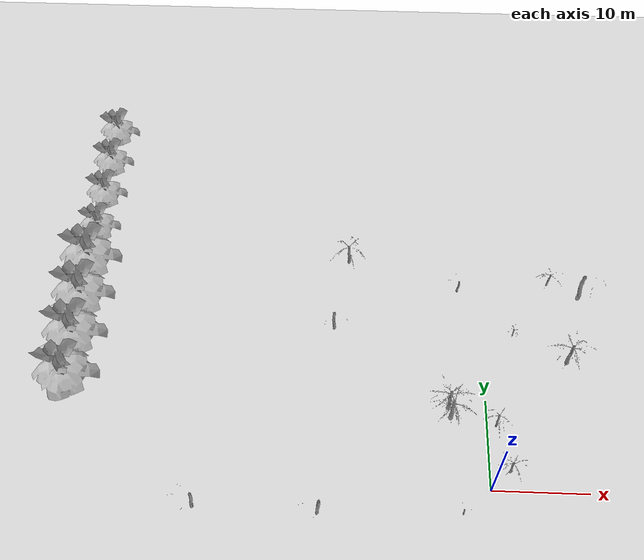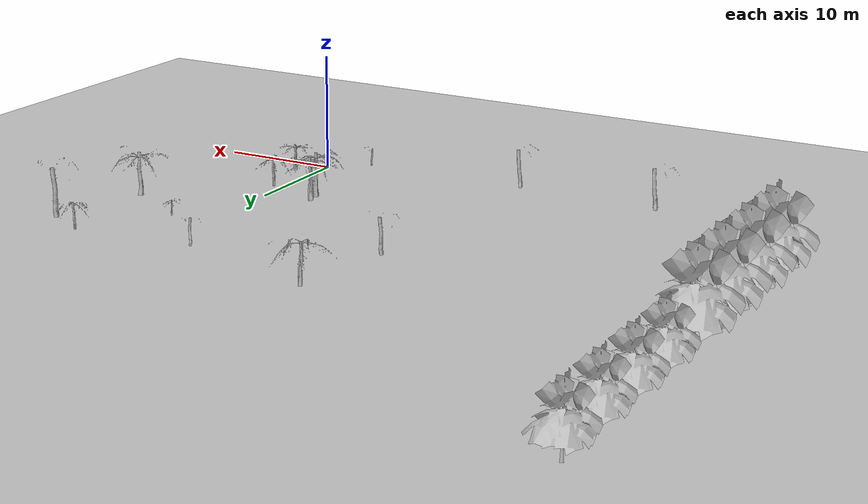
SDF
<sdf version="1.6">
 <world name="default">
  <model name="ground_plane">
   <static>1</static>
   <link name="link">
    <collision name="collision">
     <geometry><plane><normal>0 0 1</normal><size>200 200</size></plane></geometry>
     <surface>
      <contact><collide_bitmask>65535</collide_bitmask></contact>
      <friction><ode><mu>100</mu><mu2>50</mu2></ode></friction>
     </surface>
    </collision>
    <visual name="visual">
     <cast_shadows>0</cast_shadows>
     <geometry><plane><normal>0 0 1</normal><size>200 200</size></plane></geometry>
     <material>
      <script><uri>file://media/materials/scripts/gazebo.material</uri><name>Gazebo/Grey</name></script>
     </material>
    </visual>
   </link>
  </model>
  <model name="tree_0">
   <static>1</static>
   <link name="link">
    <inertial>
     <mass>100</mass>
     <inertia><ixx>100</ixx><ixy>0</ixy><ixz>0</ixz><iyy>100</iyy><iyz>0</iyz><izz>100</izz></inertia>
    </inertial>
    <collision name="collision">
     <geometry><mesh><uri>model://tree/meshes/tree.dae</uri></mesh></geometry>
    </collision>
    <visual name="visual"><geometry><mesh><uri>model://tree/meshes/tree.dae</uri></mesh></geometry></visual>
   </link>
   <pose>-44.6003 10.3851 0 0 -0 0</pose>
  </model>
  <model name="tree_1">
   <static>1</static>
   <link name="link">
    <inertial>
     <mass>100</mass>
     <inertia><ixx>100</ixx><ixy>0</ixy><ixz>0</ixz><iyy>100</iyy><iyz>0</iyz><izz>100</izz></inertia>
    </inertial>
    <collision name="collision">
     <geometry><mesh><uri>model://tree/meshes/tree.dae</uri></mesh></geometry>
    </collision>
    <visual name="visual"><geometry><mesh><uri>model://tree/meshes/tree.dae</uri></mesh></geometry></visual>
   </link>
   <pose>-44.6003 15.3851 0 0 -0 0</pose>
  </model>
  <model name="tree_2">
   <static>1</static>
   <link name="link">
    <inertial>
     <mass>100</mass>
     <inertia><ixx>100</ixx><ixy>0</ixy><ixz>0</ixz><iyy>100</iyy><iyz>0</iyz><izz>100</izz></inertia>
    </inertial>
    <collision name="collision">
     <geometry><mesh><uri>model://tree/meshes/tree.dae</uri></mesh></geometry>
    </collision>
    <visual name="visual"><geometry><mesh><uri>model://tree/meshes/tree.dae</uri></mesh></geometry></visual>
   </link>
   <pose>-44.6003 20.3851 0 0 -0 0</pose>
  </model>
  <model name="tree_3">
   <static>1</static>
   <link name="link">
    <inertial>
     <mass>100</mass>
     <inertia><ixx>100</ixx><ixy>0</ixy><ixz>0</ixz><iyy>100</iyy><iyz>0</iyz><izz>100</izz></inertia>
    </inertial>
    <collision name="collision">
     <geometry><mesh><uri>model://tree/meshes/tree.dae</uri></mesh></geometry>
    </collision>
    <visual name="visual"><geometry><mesh><uri>model://tree/meshes/tree.dae</uri></mesh></geometry></visual>
   </link>
   <pose>-44.6003 25.3851 0 0 -0 0</pose>
  </model>
  <model name="tree_4">
   <static>1</static>
   <link name="link">
    <inertial>
     <mass>100</mass>
     <inertia><ixx>100</ixx><ixy>0</ixy><ixz>0</ixz><iyy>100</iyy><iyz>0</iyz><izz>100</izz></inertia>
    </inertial>
    <collision name="collision">
     <geometry><mesh><uri>model://tree/meshes/tree.dae</uri><scale>0.7 0.7 0.7</scale></mesh></geometry>
    </collision>
    <visual name="visual">
     <geometry><mesh><uri>model://tree/meshes/tree.dae</uri><scale>0.7 0.7 0.7</scale></mesh></geometry>
    </visual>
   </link>
   <pose>-44.6003 30.3851 0 0 -0 0</pose>
  </model>
  <model name="tree_5">
   <static>1</static>
   <link name="link">
    <inertial>
     <mass>100</mass>
     <inertia><ixx>100</ixx><ixy>0</ixy><ixz>0</ixz><iyy>100</iyy><iyz>0</iyz><izz>100</izz></inertia>
    </inertial>
    <collision name="collision">
     <geometry><mesh><uri>model://tree/meshes/tree.dae</uri><scale>0.7 0.7 0.7</scale></mesh></geometry>
    </collision>
    <visual name="visual">
     <geometry><mesh><uri>model://tree/meshes/tree.dae</uri><scale>0.7 0.7 0.7</scale></mesh></geometry>
    </visual>
   </link>
   <pose>-44.6003 35.3851 0 0 -0 0</pose>
  </model>
  <model name="tree_6">
   <static>1</static>
   <link name="link">
    <inertial>
     <mass>100</mass>
     <inertia><ixx>100</ixx><ixy>0</ixy><ixz>0</ixz><iyy>100</iyy><iyz>0</iyz><izz>100</izz></inertia>
    </inertial>
    <collision name="collision">
     <geometry><mesh><uri>model://tree/meshes/tree.dae</uri><scale>0.7 0.7 0.7</scale></mesh></geometry>
    </collision>
    <visual name="visual">
     <geometry><mesh><uri>model://tree/meshes/tree.dae</uri><scale>0.7 0.7 0.7</scale></mesh></geometry>
    </visual>
   </link>
   <pose>-44.6003 40.3851 0 0 -0 0</pose>
  </model>
  <model name="tree_7">
   <static>1</static>
   <link name="link">
    <inertial>
     <mass>100</mass>
     <inertia><ixx>100</ixx><ixy>0</ixy><ixz>0</ixz><iyy>100</iyy><iyz>0</iyz><izz>100</izz></inertia>
    </inertial>
    <collision name="collision">
     <geometry><mesh><uri>model://tree/meshes/tree.dae</uri><scale>0.7 0.7 0.7</scale></mesh></geometry>
    </collision>
    <visual name="visual">
     <geometry><mesh><uri>model://tree/meshes/tree.dae</uri><scale>0.7 0.7 0.7</scale></mesh></geometry>
    </visual>
   </link>
   <pose>-44.6003 45.3851 0 0 -0 0</pose>
  </model>
  <model name="tre_1">
   <static>1</static>
   <link name="link">
    <pose>-3.7424508527905544 5.8271430137608995 0 0 0 3.567828267389643</pose>
    <inertial>
     <mass>100</mass>
     <inertia><ixx>100</ixx><ixy>0</ixy><ixz>0</ixz><iyy>100</iyy><iyz>0</iyz><izz>100</izz></inertia>
    </inertial>
    <collision name="collision">
     <geometry>
      <mesh>
       <uri>file:///home/dgguglielmo/forest_gen/models_high_res/picea_abies_4.dae</uri>
       <scale>1.1164753697339267 1.1164753697339267 1.1164753697339267</scale>
      </mesh>
     </geometry>
    </collision>
    <visual name="visual">
     <geometry>
      <mesh>
       <uri>file:///home/dgguglielmo/forest_gen/models_high_res/picea_abies_4.dae</uri>
       <scale>1.1164753697339267 1.1164753697339267 1.1164753697339267</scale>
      </mesh>
     </geometry>
    </visual>
   </link>
   <pose>-3.7424508527905544 5.8271430137608995 0 0 0 3.567828267389643</pose>
  </model>
  <model name="tre_26">
   <static>1</static>
   <link name="link">
    <pose>-1.3321117786917434 4.8243380110685266 0 0 0 0.2953682563070458</pose>
    <inertial>
     <mass>100</mass>
     <inertia><ixx>100</ixx><ixy>0</ixy><ixz>0</ixz><iyy>100</iyy><iyz>0</iyz><izz>100</izz></inertia>
    </inertial>
    <collision name="collision">
     <geometry>
      <mesh>
       <uri>file:///home/dgguglielmo/forest_gen/models_high_res/picea_abies_4.dae</uri>
       <scale>1.7479213084722356 1.7479213084722356 1.7479213084722356</scale>
      </mesh>
     </geometry>
    </collision>
    <visual name="visual">
     <geometry>
      <mesh>
       <uri>file:///home/dgguglielmo/forest_gen/models_high_res/picea_abies_4.dae</uri>
       <scale>1.7479213084722356 1.7479213084722356 1.7479213084722356</scale>
      </mesh>
     </geometry>
    </visual>
   </link>
   <pose>-1.3321117786917434 4.8243380110685266 0 0 0 0.2953682563070458</pose>
  </model>
  <model name="tre_30">
   <static>1</static>
   <link name="link">
    <pose>-3.83021637844341 16.230051146210037 0 0 0 4.921718425677457</pose>
    <inertial>
     <mass>100</mass>
     <inertia><ixx>100</ixx><ixy>0</ixy><ixz>0</ixz><iyy>100</iyy><iyz>0</iyz><izz>100</izz></inertia>
    </inertial>
    <collision name="collision">
     <geometry>
      <mesh>
       <uri>file:///home/dgguglielmo/forest_gen/models_high_res/picea_abies_6.dae</uri>
       <scale>1.904307043205943 1.904307043205943 1.904307043205943</scale>
      </mesh>
     </geometry>
    </collision>
    <visual name="visual">
     <geometry>
      <mesh>
       <uri>file:///home/dgguglielmo/forest_gen/models_high_res/picea_abies_6.dae</uri>
       <scale>1.904307043205943 1.904307043205943 1.904307043205943</scale>
      </mesh>
     </geometry>
    </visual>
   </link>
   <pose>-3.83021637844341 16.230051146210037 0 0 0 4.921718425677457</pose>
  </model>
  <model name="tre_31">
   <static>1</static>
   <link name="link">
    <pose>-9.580212354414922 3.431378443915932 0 0 0 1.0237731702362387</pose>
    <inertial>
     <mass>100</mass>
     <inertia><ixx>100</ixx><ixy>0</ixy><ixz>0</ixz><iyy>100</iyy><iyz>0</iyz><izz>100</izz></inertia>
    </inertial>
    <collision name="collision">
     <geometry>
      <mesh>
       <uri>file:///home/dgguglielmo/forest_gen/models_high_res/picea_abies_6.dae</uri>
       <scale>1.5096348598435865 1.5096348598435865 1.5096348598435865</scale>
      </mesh>
     </geometry>
    </collision>
    <visual name="visual">
     <geometry>
      <mesh>
       <uri>file:///home/dgguglielmo/forest_gen/models_high_res/picea_abies_6.dae</uri>
       <scale>1.5096348598435865 1.5096348598435865 1.5096348598435865</scale>
      </mesh>
     </geometry>
    </visual>
   </link>
   <pose>-9.580212354414922 3.431378443915932 0 0 0 1.0237731702362387</pose>
  </model>
  <model name="tre_53">
   <static>1</static>
   <link name="link">
    <pose>-2.2331080808950006 3.9262235672835573 0 0 0 4.982630782343486</pose>
    <inertial>
     <mass>100</mass>
     <inertia><ixx>100</ixx><ixy>0</ixy><ixz>0</ixz><iyy>100</iyy><iyz>0</iyz><izz>100</izz></inertia>
    </inertial>
    <collision name="collision">
     <geometry>
      <mesh>
       <uri>file:///home/dgguglielmo/forest_gen/models_high_res/picea_abies_5.dae</uri>
       <scale>1.1545558972463663 1.1545558972463663 1.1545558972463663</scale>
      </mesh>
     </geometry>
    </collision>
    <visual name="visual">
     <geometry>
      <mesh>
       <uri>file:///home/dgguglielmo/forest_gen/models_high_res/picea_abies_5.dae</uri>
       <scale>1.1545558972463663 1.1545558972463663 1.1545558972463663</scale>
      </mesh>
     </geometry>
    </visual>
   </link>
   <pose>-2.2331080808950006 3.9262235672835573 0 0 0 4.982630782343486</pose>
  </model>
  <model name="tre_56">
   <static>1</static>
   <link name="link">
    <pose>-18.933350015251897 19.755239361853405 0 0 0 4.145586921885531</pose>
    <inertial>
     <mass>100</mass>
     <inertia><ixx>100</ixx><ixy>0</ixy><ixz>0</ixz><iyy>100</iyy><iyz>0</iyz><izz>100</izz></inertia>
    </inertial>
    <collision name="collision">
     <geometry>
      <mesh>
       <uri>file:///home/dgguglielmo/forest_gen/models_high_res/picea_abies_5.dae</uri>
       <scale>1.039401317494748 1.039401317494748 1.039401317494748</scale>
      </mesh>
     </geometry>
    </collision>
    <visual name="visual">
     <geometry>
      <mesh>
       <uri>file:///home/dgguglielmo/forest_gen/models_high_res/picea_abies_5.dae</uri>
       <scale>1.039401317494748 1.039401317494748 1.039401317494748</scale>
      </mesh>
     </geometry>
    </visual>
   </link>
   <pose>-18.933350015251897 19.755239361853405 0 0 0 4.145586921885531</pose>
  </model>
  <model name="tre_65">
   <static>1</static>
   <link name="link">
    <pose>-0.10440139023194206 4.807188138289934 0 0 0 0.8563756328680432</pose>
    <inertial>
     <mass>100</mass>
     <inertia><ixx>100</ixx><ixy>0</ixy><ixz>0</ixz><iyy>100</iyy><iyz>0</iyz><izz>100</izz></inertia>
    </inertial>
    <collision name="collision">
     <geometry>
      <mesh>
       <uri>file:///home/dgguglielmo/forest_gen/models_high_res/picea_abies_4.dae</uri>
       <scale>1.8036484680612435 1.8036484680612435 1.8036484680612435</scale>
      </mesh>
     </geometry>
    </collision>
    <visual name="visual">
     <geometry>
      <mesh>
       <uri>file:///home/dgguglielmo/forest_gen/models_high_res/picea_abies_4.dae</uri>
       <scale>1.8036484680612435 1.8036484680612435 1.8036484680612435</scale>
      </mesh>
     </geometry>
    </visual>
   </link>
   <pose>-0.10440139023194206 4.807188138289934 0 0 0 0.8563756328680432</pose>
  </model>
  <model name="tre_71">
   <static>1</static>
   <link name="link">
    <pose>-13.614711185978706 12.052169444057867 0 0 0 4.215248309736264</pose>
    <inertial>
     <mass>100</mass>
     <inertia><ixx>100</ixx><ixy>0</ixy><ixz>0</ixz><iyy>100</iyy><iyz>0</iyz><izz>100</izz></inertia>
    </inertial>
    <collision name="collision">
     <geometry>
      <mesh>
       <uri>file:///home/dgguglielmo/forest_gen/models_high_res/picea_abies_4.dae</uri>
       <scale>0.612023000823716 0.612023000823716 0.612023000823716</scale>
      </mesh>
     </geometry>
    </collision>
    <visual name="visual">
     <geometry>
      <mesh>
       <uri>file:///home/dgguglielmo/forest_gen/models_high_res/picea_abies_4.dae</uri>
       <scale>0.612023000823716 0.612023000823716 0.612023000823716</scale>
      </mesh>
     </geometry>
    </visual>
   </link>
   <pose>-13.614711185978706 12.052169444057867 0 0 0 4.215248309736264</pose>
  </model>
  <model name="tre_87">
   <static>1</static>
   <link name="link">
    <pose>1.508996812841147 9.361791323177798 0 0 0 5.504763427922698</pose>
    <inertial>
     <mass>100</mass>
     <inertia><ixx>100</ixx><ixy>0</ixy><ixz>0</ixz><iyy>100</iyy><iyz>0</iyz><izz>100</izz></inertia>
    </inertial>
    <collision name="collision">
     <geometry>
      <mesh>
       <uri>file:///home/dgguglielmo/forest_gen/models_high_res/picea_abies_4.dae</uri>
       <scale>1.7805441548745358 1.7805441548745358 1.7805441548745358</scale>
      </mesh>
     </geometry>
    </collision>
    <visual name="visual">
     <geometry>
      <mesh>
       <uri>file:///home/dgguglielmo/forest_gen/models_high_res/picea_abies_4.dae</uri>
       <scale>1.7805441548745358 1.7805441548745358 1.7805441548745358</scale>
      </mesh>
     </geometry>
    </visual>
   </link>
   <pose>1.508996812841147 9.361791323177798 0 0 0 5.504763427922698</pose>
  </model>
  <model name="tre_114">
   <static>1</static>
   <link name="link">
    <pose>-15.702534302854861 6.335874722918447 0 0 0 0.9474270433493562</pose>
    <inertial>
     <mass>100</mass>
     <inertia><ixx>100</ixx><ixy>0</ixy><ixz>0</ixz><iyy>100</iyy><iyz>0</iyz><izz>100</izz></inertia>
    </inertial>
    <collision name="collision">
     <geometry>
      <mesh>
       <uri>file:///home/dgguglielmo/forest_gen/models_high_res/picea_abies_6.dae</uri>
       <scale>1.5915495897024727 1.5915495897024727 1.5915495897024727</scale>
      </mesh>
     </geometry>
    </collision>
    <visual name="visual">
     <geometry>
      <mesh>
       <uri>file:///home/dgguglielmo/forest_gen/models_high_res/picea_abies_6.dae</uri>
       <scale>1.5915495897024727 1.5915495897024727 1.5915495897024727</scale>
      </mesh>
     </geometry>
    </visual>
   </link>
   <pose>-15.702534302854861 6.335874722918447 0 0 0 0.9474270433493562</pose>
  </model>
  <model name="tre_115">
   <static>1</static>
   <link name="link">
    <pose>-9.253889412839968 7.578268013050664 0 0 0 2.815101479211592</pose>
    <inertial>
     <mass>100</mass>
     <inertia><ixx>100</ixx><ixy>0</ixy><ixz>0</ixz><iyy>100</iyy><iyz>0</iyz><izz>100</izz></inertia>
    </inertial>
    <collision name="collision">
     <geometry>
      <mesh>
       <uri>file:///home/dgguglielmo/forest_gen/models_high_res/picea_abies_6.dae</uri>
       <scale>0.69230287844281 0.69230287844281 0.69230287844281</scale>
      </mesh>
     </geometry>
    </collision>
    <visual name="visual">
     <geometry>
      <mesh>
       <uri>file:///home/dgguglielmo/forest_gen/models_high_res/picea_abies_6.dae</uri>
       <scale>0.69230287844281 0.69230287844281 0.69230287844281</scale>
      </mesh>
     </geometry>
    </visual>
   </link>
   <pose>-9.253889412839968 7.578268013050664 0 0 0 2.815101479211592</pose>
  </model>
  <model name="tre_149">
   <static>1</static>
   <link name="link">
    <pose>0.37250869263879594 12.117823417885361 0 0 0 0.26945125544427295</pose>
    <inertial>
     <mass>100</mass>
     <inertia><ixx>100</ixx><ixy>0</ixy><ixz>0</ixz><iyy>100</iyy><iyz>0</iyz><izz>100</izz></inertia>
    </inertial>
    <collision name="collision">
     <geometry>
      <mesh>
       <uri>file:///home/dgguglielmo/forest_gen/models_high_res/picea_abies_6.dae</uri>
       <scale>1.0042736714849632 1.0042736714849632 1.0042736714849632</scale>
      </mesh>
     </geometry>
    </collision>
    <visual name="visual">
     <geometry>
      <mesh>
       <uri>file:///home/dgguglielmo/forest_gen/models_high_res/picea_abies_6.dae</uri>
       <scale>1.0042736714849632 1.0042736714849632 1.0042736714849632</scale>
      </mesh>
     </geometry>
    </visual>
   </link>
   <pose>0.37250869263879594 12.117823417885361 0 0 0 0.26945125544427295</pose>
  </model>
  <model name="tre_151">
   <static>1</static>
   <link name="link">
    <pose>-7.319583975543441 13.838990775986133 0 0 0 0.024660824016253906</pose>
    <inertial>
     <mass>100</mass>
     <inertia><ixx>100</ixx><ixy>0</ixy><ixz>0</ixz><iyy>100</iyy><iyz>0</iyz><izz>100</izz></inertia>
    </inertial>
    <collision name="collision">
     <geometry>
      <mesh>
       <uri>file:///home/dgguglielmo/forest_gen/models_high_res/picea_abies_5.dae</uri>
       <scale>1.6172650946785483 1.6172650946785483 1.6172650946785483</scale>
      </mesh>
     </geometry>
    </collision>
    <visual name="visual">
     <geometry>
      <mesh>
       <uri>file:///home/dgguglielmo/forest_gen/models_high_res/picea_abies_5.dae</uri>
       <scale>1.6172650946785483 1.6172650946785483 1.6172650946785483</scale>
      </mesh>
     </geometry>
    </visual>
   </link>
   <pose>-7.319583975543441 13.838990775986133 0 0 0 0.024660824016253906</pose>
  </model>
  <model name="tre_153">
   <static>1</static>
   <link name="link">
    <pose>2.1163822064283337 18.45162693884498 0 0 0 1.6859000519741298</pose>
    <inertial>
     <mass>100</mass>
     <inertia><ixx>100</ixx><ixy>0</ixy><ixz>0</ixz><iyy>100</iyy><iyz>0</iyz><izz>100</izz></inertia>
    </inertial>
    <collision name="collision">
     <geometry>
      <mesh>
       <uri>file:///home/dgguglielmo/forest_gen/models_high_res/picea_abies_6.dae</uri>
       <scale>1.386979773037842 1.386979773037842 1.386979773037842</scale>
      </mesh>
     </geometry>
    </collision>
    <visual name="visual">
     <geometry>
      <mesh>
       <uri>file:///home/dgguglielmo/forest_gen/models_high_res/picea_abies_6.dae</uri>
       <scale>1.386979773037842 1.386979773037842 1.386979773037842</scale>
      </mesh>
     </geometry>
    </visual>
   </link>
   <pose>2.1163822064283337 18.45162693884498 0 0 0 1.6859000519741298</pose>
  </model>
 </world>
</sdf>
